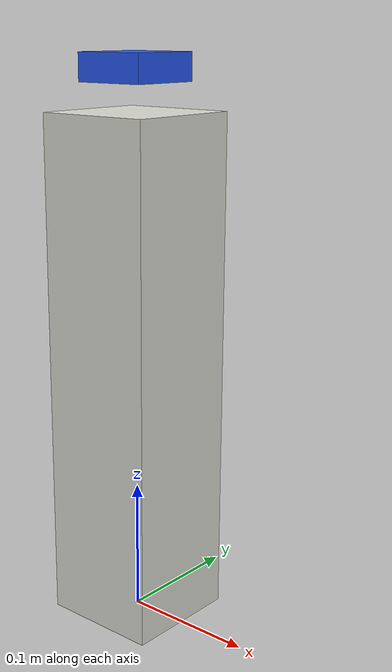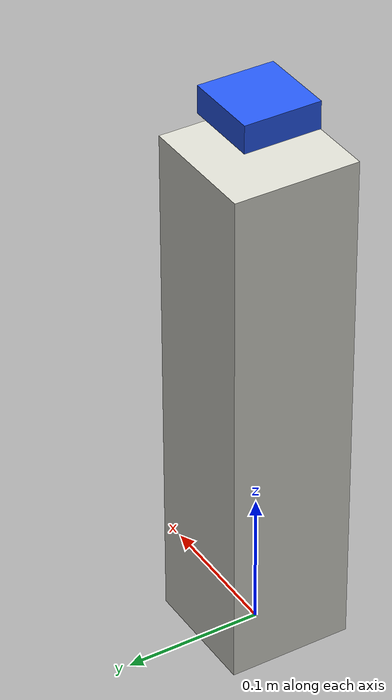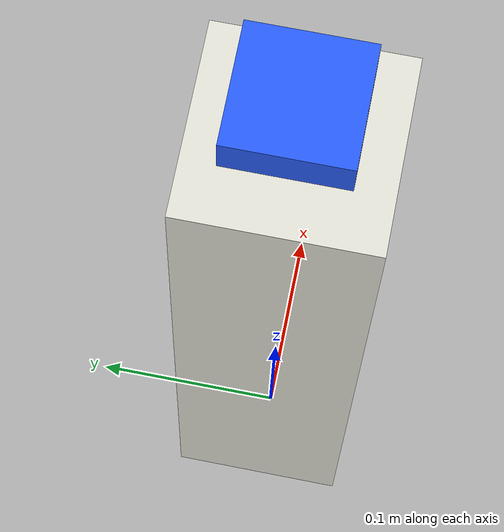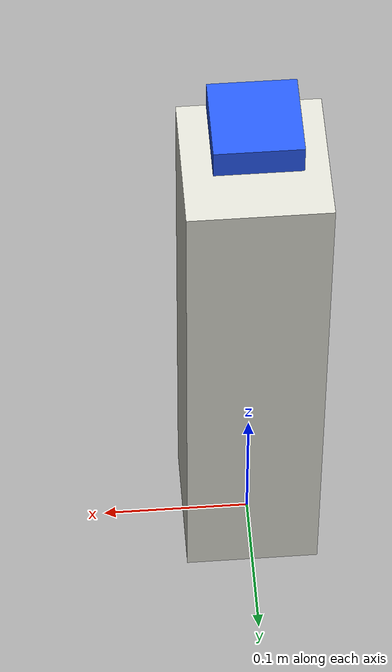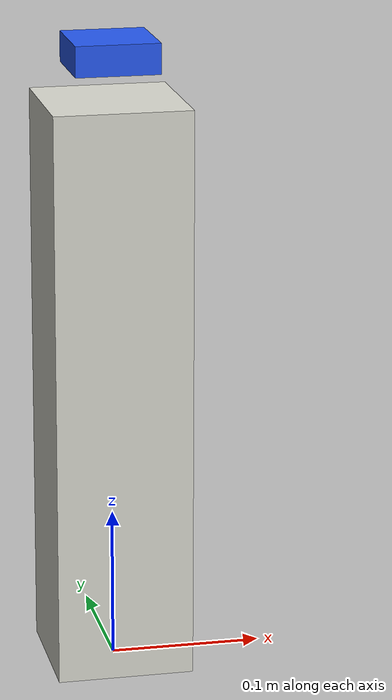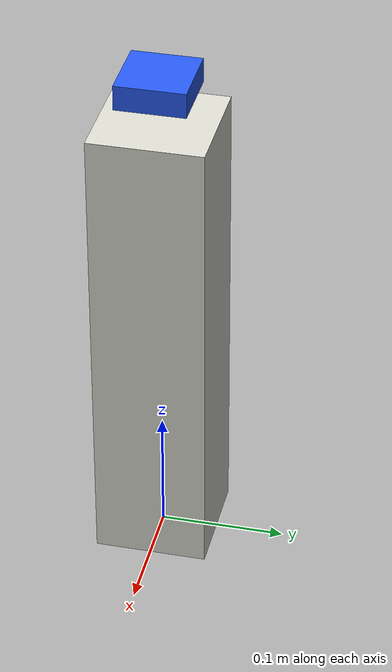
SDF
<?xml version="1.0"?>
<sdf version="1.9">
  <model name="azas_dispenser">
    <pose>0 0 0 0 0 0</pose>
    <static>false</static>

    <link name="base_link">
      <pose>0 0 0.19 0 0 0</pose>
      <inertial>
        <mass>20.0</mass>
        <inertia>
          <ixx>0.20</ixx>
          <iyy>0.20</iyy>
          <izz>0.20</izz>
        </inertia>
      </inertial>
      <collision name="base_collision">
        <geometry>
          <box>
            <size>0.09 0.09 0.38</size>
          </box>
        </geometry>
        <surface>
          <friction>
            <ode>
              <mu>1.0</mu>
              <mu2>1.0</mu2>
            </ode>
          </friction>
        </surface>
      </collision>
      <visual name="base_visual">
        <geometry>
          <box>
            <size>0.09 0.09 0.38</size>
          </box>
        </geometry>
        <material>
          <ambient>0.86 0.86 0.82 1</ambient>
          <diffuse>0.86 0.86 0.82 1</diffuse>
        </material>
      </visual>
    </link>

    <link name="pump_link">
      <pose>0 0 0.41 0 0 0</pose>
      <inertial>
        <mass>0.08</mass>
        <inertia>
          <ixx>0.00005</ixx>
          <iyy>0.00005</iyy>
          <izz>0.00005</izz>
        </inertia>
      </inertial>
      <collision name="pump_collision">
        <geometry>
          <box>
            <size>0.055 0.055 0.02</size>
          </box>
        </geometry>
      </collision>
      <visual name="pump_visual">
        <geometry>
          <box>
            <size>0.055 0.055 0.02</size>
          </box>
        </geometry>
        <material>
          <ambient>0.15 0.35 0.95 1</ambient>
          <diffuse>0.15 0.35 0.95 1</diffuse>
        </material>
      </visual>
    </link>

    <joint name="base_to_world" type="fixed">
      <parent>world</parent>
      <child>base_link</child>
    </joint>

    <joint name="pump_slide_joint" type="prismatic">
      <parent>base_link</parent>
      <child>pump_link</child>
      <axis>
        <xyz>0 0 1</xyz>
        <limit>
          <lower>-0.06</lower>
          <upper>0.0</upper>
          <effort>120</effort>
          <velocity>0.2</velocity>
        </limit>
        <dynamics>
          <spring_reference>0.0</spring_reference>
          <spring_stiffness>550.0</spring_stiffness>
          <damping>18.0</damping>
          <friction>0.5</friction>
        </dynamics>
      </axis>
    </joint>
  </model>
</sdf>
